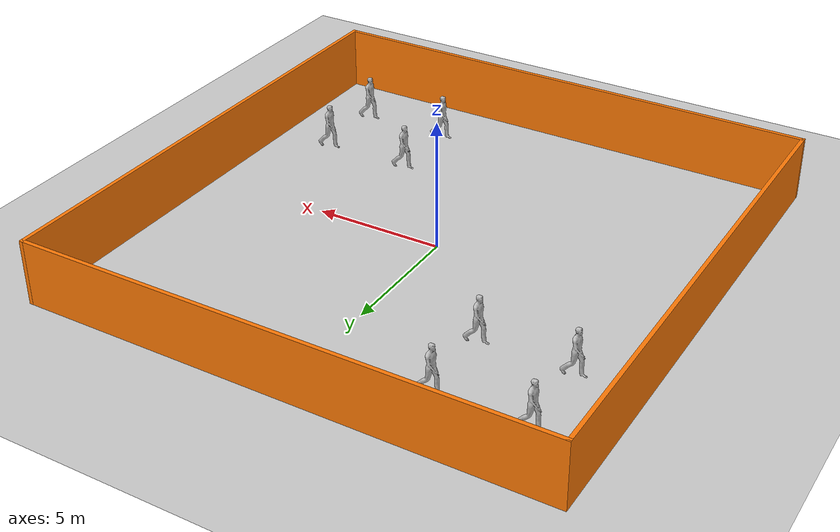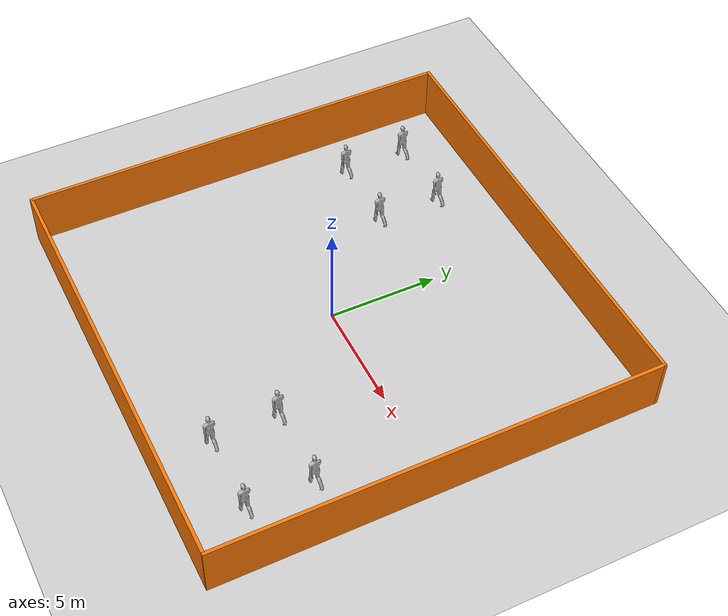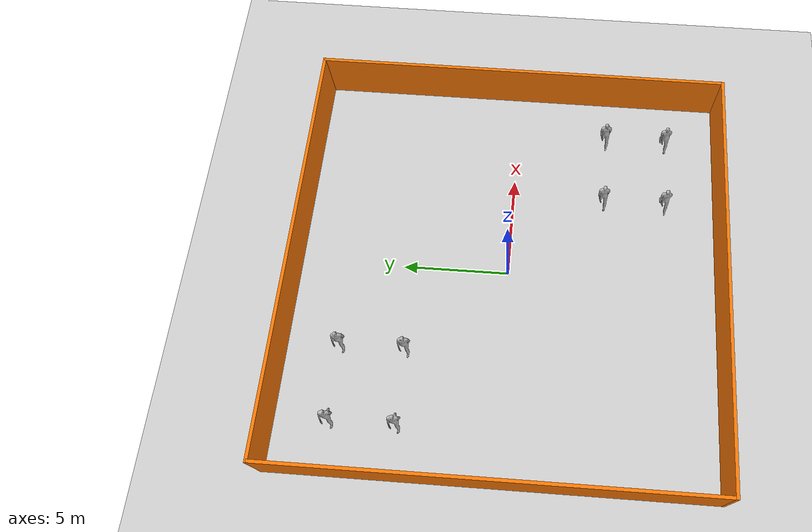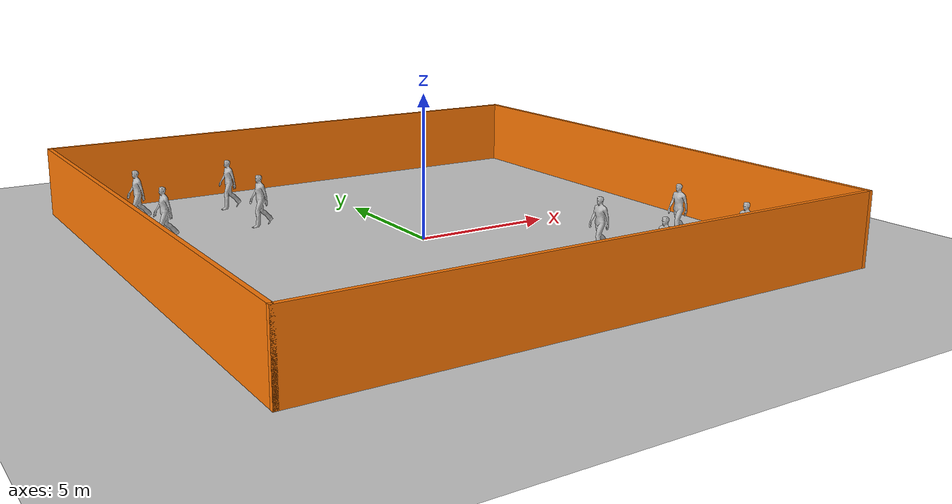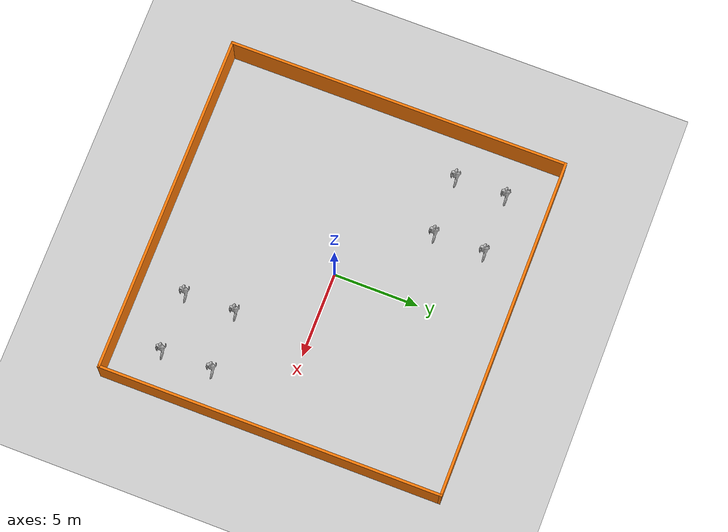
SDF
<sdf version="1.6">
 <world name="default">
  <light name="sun" type="directional">
   <pose>0 0 10 0 -0 0</pose>
   <diffuse>0.8 0.8 0.8 1</diffuse>
   <specular>0.2 0.2 0.2 1</specular>
   <attenuation>
    <range>1000</range>
    <constant>0.9</constant>
    <linear>0.01</linear>
    <quadratic>0.001</quadratic>
   </attenuation>
   <direction>-0.5 0.1 -0.9</direction>
  </light>
  <model name="ground_plane">
   <static>1</static>
   <link name="link">
    <collision name="collision">
     <geometry><plane><normal>0 0 1</normal><size>100 100</size></plane></geometry>
     <surface><friction><ode><mu>100</mu><mu2>50</mu2></ode></friction></surface>
    </collision>
    <visual name="visual">
     <cast_shadows>0</cast_shadows>
     <geometry><plane><normal>0 0 1</normal><size>100 100</size></plane></geometry>
     <material>
      <script><uri>file://media/materials/scripts/gazebo.material</uri><name>Gazebo/Grey</name></script>
     </material>
    </visual>
   </link>
  </model>
  <include>
   <name>person_walking1</name>
   <pose>7.6 -7.4 0.02 0 -0 4.71</pose>
   <uri>model://person_walking_fixed</uri>
  </include>
  <include>
   <name>person_walking2</name>
   <pose>4.1 -7.4 0.02 0 -0 4.71</pose>
   <uri>model://person_walking_fixed</uri>
  </include>
  <include>
   <name>person_walking3</name>
   <pose>4.1 -4.4 0.02 0 -0 4.71</pose>
   <uri>model://person_walking_fixed</uri>
  </include>
  <include>
   <name>person_walking4</name>
   <pose>7.6 -4.4 0.02 0 -0 4.71</pose>
   <uri>model://person_walking_fixed</uri>
  </include>
  <include>
   <name>person_walking5</name>
   <pose>-7.6 7.4 0.02 0 -0 4.71</pose>
   <uri>model://person_walking_fixed</uri>
  </include>
  <include>
   <name>person_walking6</name>
   <pose>-4.1 7.4 0.02 0 -0 4.71</pose>
   <uri>model://person_walking_fixed</uri>
  </include>
  <include>
   <name>person_walking7</name>
   <pose>-4.1 4.4 0.02 0 -0 4.71</pose>
   <uri>model://person_walking_fixed</uri>
  </include>
  <include>
   <name>person_walking8</name>
   <pose>-7.6 4.4 0.02 0 -0 4.71</pose>
   <uri>model://person_walking_fixed</uri>
  </include>
  <gravity>0 0 -9.8</gravity>
  <magnetic_field>6e-06 2.3e-05 -4.2e-05</magnetic_field>
  <atmosphere type="adiabatic"/>
  <physics name="default_physics" default="0" type="ode">
   <max_step_size>0.001</max_step_size>
   <real_time_factor>1</real_time_factor>
   <real_time_update_rate>1000</real_time_update_rate>
  </physics>
  <scene><ambient>0.4 0.4 0.4 1</ambient><background>0.7 0.7 0.7 1</background><shadows>1</shadows></scene>
  <audio><device>default</device></audio>
  <spherical_coordinates>
   <surface_model>EARTH_WGS84</surface_model>
   <latitude_deg>0</latitude_deg>
   <longitude_deg>0</longitude_deg>
   <elevation>0</elevation>
   <heading_deg>0</heading_deg>
  </spherical_coordinates>
  <model name="quadratic_flow_2">
   <link name="Wall_11">
    <collision name="Wall_11_Collision">
     <geometry><box><size>20.15 0.15 2.5</size></box></geometry>
     <pose>0 0 1.25 0 -0 0</pose>
    </collision>
    <visual name="Wall_11_Visual">
     <pose>0 0 1.25 0 -0 0</pose>
     <geometry><box><size>20.15 0.15 2.5</size></box></geometry>
     <material>
      <script><uri>file://media/materials/scripts/gazebo.material</uri><name>Gazebo/Grey</name></script>
      <ambient>0.996078 0.47451 0.0196078 1</ambient>
     </material>
     <meta><layer>0</layer></meta>
    </visual>
    <pose>10 0 0 0 -0 1.5708</pose>
   </link>
   <link name="Wall_13">
    <collision name="Wall_13_Collision">
     <geometry><box><size>20.15 0.15 2.5</size></box></geometry>
     <pose>0 0 1.25 0 -0 0</pose>
    </collision>
    <visual name="Wall_13_Visual">
     <pose>0 0 1.25 0 -0 0</pose>
     <geometry><box><size>20.15 0.15 2.5</size></box></geometry>
     <material>
      <script><uri>file://media/materials/scripts/gazebo.material</uri><name>Gazebo/Grey</name></script>
      <ambient>0.996078 0.47451 0.0196078 1</ambient>
     </material>
     <meta><layer>0</layer></meta>
    </visual>
    <pose>0 10 0 0 -0 3.14159</pose>
   </link>
   <link name="Wall_15">
    <collision name="Wall_15_Collision">
     <geometry><box><size>20.15 0.15 2.5</size></box></geometry>
     <pose>0 0 1.25 0 -0 0</pose>
    </collision>
    <visual name="Wall_15_Visual">
     <pose>0 0 1.25 0 -0 0</pose>
     <geometry><box><size>20.15 0.15 2.5</size></box></geometry>
     <material>
      <script><uri>file://media/materials/scripts/gazebo.material</uri><name>Gazebo/Grey</name></script>
      <ambient>0.996078 0.47451 0.0196078 1</ambient>
     </material>
     <meta><layer>0</layer></meta>
    </visual>
    <pose>-10 0 0 0 -0 1.5708</pose>
   </link>
   <link name="Wall_9">
    <collision name="Wall_9_Collision">
     <geometry><box><size>20.15 0.15 2.5</size></box></geometry>
     <pose>0 0 1.25 0 -0 0</pose>
    </collision>
    <visual name="Wall_9_Visual">
     <pose>0 0 1.25 0 -0 0</pose>
     <geometry><box><size>20.15 0.15 2.5</size></box></geometry>
     <material>
      <script><uri>file://media/materials/scripts/gazebo.material</uri><name>Gazebo/Grey</name></script>
      <ambient>0.996078 0.47451 0.0196078 1</ambient>
     </material>
     <meta><layer>0</layer></meta>
    </visual>
    <pose>0 -10 0 0 -0 0</pose>
   </link>
   <static>1</static>
  </model>
 </world>
</sdf>

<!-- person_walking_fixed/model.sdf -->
<sdf version="1.5">
  <model name="person_walking">
    <link name="link">
      <inertial>
        <pose>0 0 0.95 0 0 0</pose>
        <mass>80.0</mass>
        <inertia>
          <ixx>27.82</ixx>
          <ixy>0</ixy>
          <ixz>0</ixz>
          <iyy>24.88</iyy>
          <iyz>0</iyz>
          <izz>4.57</izz>
        </inertia>
      </inertial>

      <visual name="visual">
        <pose>0 0 -0.02 0 0 0</pose>
        <geometry>
          <mesh>
            <uri>model://person_walking/meshes/walking.dae</uri>
          </mesh>
        </geometry>
      </visual>
      <self_collide>0</self_collide>
      <kinematic>0</kinematic>
      <gravity>0</gravity>
    </link>
  </model>
</sdf>
